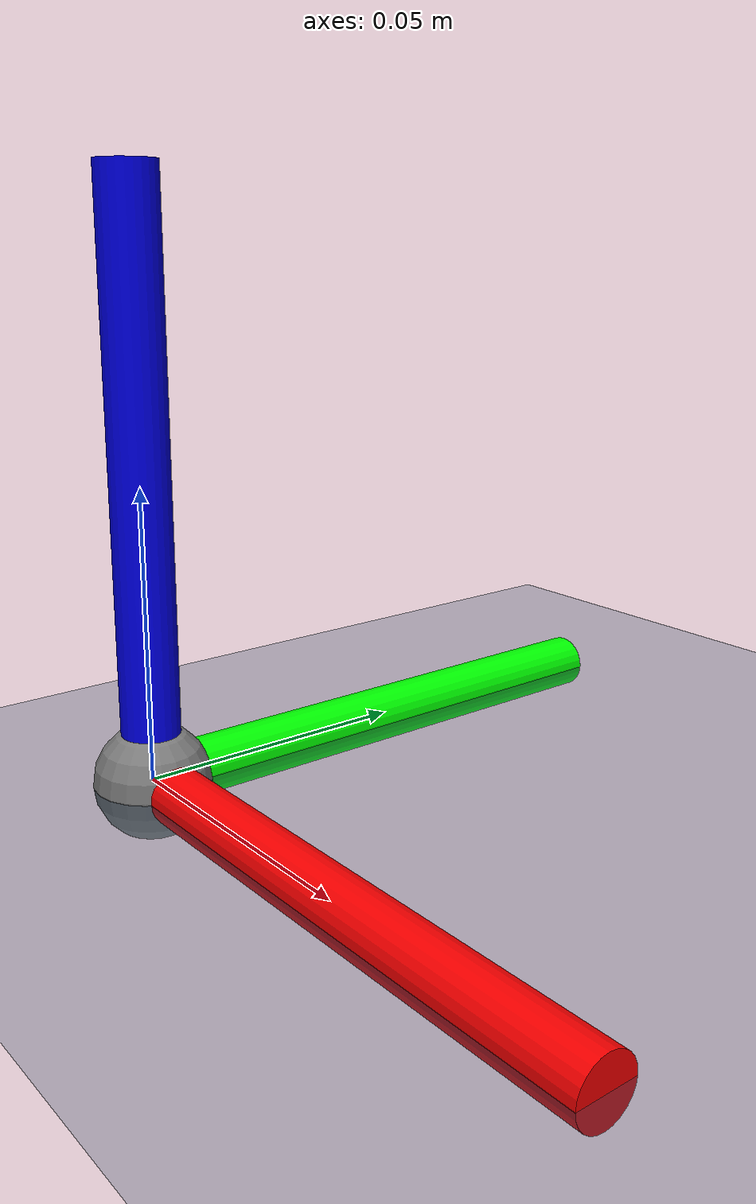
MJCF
<mujoco model="hand">
    <compiler angle="radian" meshdir="../"/>
  <include file="../assets/scene/floor_sky.xml" />
  <worldbody>

    <!-- Head  -->
    <body name="Head"  pos="0.0 0.0 0.0">
      <joint type="free" name="head"/>
      <geom type="sphere" size="0.01"/>
      <geom type="cylinder" size="0.005 0.05" pos="0.05 0 0" quat="0.5 0.5 0.5 0.5" rgba="1 0 0 1"/>
      <geom type="cylinder" size="0.005 0.05" pos="0 0.05 0" quat="-0.5 0.5 0.5 0.5" rgba="0 1 0 1"/>
      <geom type="cylinder" size="0.005 0.05" pos="0 0 0.05" rgba="0 0 1 1"/>
    </body>
    <body name="right_wrist"  pos="0.0 0.0 0.0">
      <joint type="free" name="right_wrist"/>
      <geom type="sphere" size="0.01"/>
      <geom type="cylinder" size="0.005 0.05" pos="0.05 0 0" quat="0.5 0.5 0.5 0.5" rgba="1 0 0 1"/>
      <geom type="cylinder" size="0.005 0.05" pos="0 0.05 0" quat="-0.5 0.5 0.5 0.5" rgba="0 1 0 1"/>
      <geom type="cylinder" size="0.005 0.05" pos="0 0 0.05" rgba="0 0 1 1"/>
    </body>
    <body name="left_wrist"  pos="00 0.0 0.0">
      <joint type="free" name="left_wrist"/>
      <geom type="sphere" size="0.01"/>
      <geom type="cylinder" size="0.005 0.05" pos="0.05 0 0" quat="0.5 0.5 0.5 0.5" rgba="1 0 0 1"/>
      <geom type="cylinder" size="0.005 0.05" pos="0 0.05 0" quat="-0.5 0.5 0.5 0.5" rgba="0 1 0 1"/>
      <geom type="cylinder" size="0.005 0.05" pos="0 0 0.05" rgba="0 0 1 1"/>
    </body>

    <!-- Right Finger 0~24 -->
    <body name="right_finger_0"  pos="0.0 0.0 0.0">
      <joint type="free"/>
      <geom type="sphere" size="0.005"/>
      <geom type="cylinder" size="0.001 0.01" pos="0.01 0 0" quat="0.5 0.5 0.5 0.5" rgba="1 0 0 1"/>
      <geom type="cylinder" size="0.001 0.01" pos="0 0.01 0" quat="-0.5 0.5 0.5 0.5" rgba="0 1 0 1"/>
      <geom type="cylinder" size="0.001 0.01" pos="0 0 0.01" rgba="0 0 1 1"/>
    </body>

    <body name="right_finger_1"  pos="0.0 0.0 0.0">
      <joint type="free"/>
      <geom type="sphere" size="0.005"/>
      <geom type="cylinder" size="0.001 0.01" pos="0.01 0 0" quat="0.5 0.5 0.5 0.5" rgba="1 0 0 1"/>
      <geom type="cylinder" size="0.001 0.01" pos="0 0.01 0" quat="-0.5 0.5 0.5 0.5" rgba="0 1 0 1"/>
      <geom type="cylinder" size="0.001 0.01" pos="0 0 0.01" rgba="0 0 1 1"/>
    </body>

    <body name="right_finger_2"  pos="0.0 0.0 0.0">
      <joint type="free"/>
      <geom type="sphere" size="0.005"/>
      <geom type="cylinder" size="0.001 0.01" pos="0.01 0 0" quat="0.5 0.5 0.5 0.5" rgba="1 0 0 1"/>
      <geom type="cylinder" size="0.001 0.01" pos="0 0.01 0" quat="-0.5 0.5 0.5 0.5" rgba="0 1 0 1"/>
      <geom type="cylinder" size="0.001 0.01" pos="0 0 0.01" rgba="0 0 1 1"/>
    </body>

    <body name="right_finger_3"  pos="0.0 0.0 0.0">
      <joint type="free"/>
      <geom type="sphere" size="0.005"/>
      <geom type="cylinder" size="0.001 0.01" pos="0.01 0 0" quat="0.5 0.5 0.5 0.5" rgba="1 0 0 1"/>
      <geom type="cylinder" size="0.001 0.01" pos="0 0.01 0" quat="-0.5 0.5 0.5 0.5" rgba="0 1 0 1"/>
      <geom type="cylinder" size="0.001 0.01" pos="0 0 0.01" rgba="0 0 1 1"/>
    </body>

    <body name="right_finger_4"  pos="0.0 0.0 0.0">
      <joint type="free"/>
      <geom type="sphere" size="0.005"/>
      <geom type="cylinder" size="0.001 0.01" pos="0.01 0 0" quat="0.5 0.5 0.5 0.5" rgba="1 0 0 1"/>
      <geom type="cylinder" size="0.001 0.01" pos="0 0.01 0" quat="-0.5 0.5 0.5 0.5" rgba="0 1 0 1"/>
      <geom type="cylinder" size="0.001 0.01" pos="0 0 0.01" rgba="0 0 1 1"/>
    </body>

    <body name="right_finger_5"  pos="0.0 0.0 0.0">
      <joint type="free"/>
      <geom type="sphere" size="0.005"/>
      <geom type="cylinder" size="0.001 0.01" pos="0.01 0 0" quat="0.5 0.5 0.5 0.5" rgba="1 0 0 1"/>
      <geom type="cylinder" size="0.001 0.01" pos="0 0.01 0" quat="-0.5 0.5 0.5 0.5" rgba="0 1 0 1"/>
      <geom type="cylinder" size="0.001 0.01" pos="0 0 0.01" rgba="0 0 1 1"/>
    </body>

    <body name="right_finger_6"  pos="0.0 0.0 0.0">
      <joint type="free"/>
      <geom type="sphere" size="0.005"/>
      <geom type="cylinder" size="0.001 0.01" pos="0.01 0 0" quat="0.5 0.5 0.5 0.5" rgba="1 0 0 1"/>
      <geom type="cylinder" size="0.001 0.01" pos="0 0.01 0" quat="-0.5 0.5 0.5 0.5" rgba="0 1 0 1"/>
      <geom type="cylinder" size="0.001 0.01" pos="0 0 0.01" rgba="0 0 1 1"/>
    </body>

    <body name="right_finger_7"  pos="0.0 0.0 0.0">
      <joint type="free"/>
      <geom type="sphere" size="0.005"/>
      <geom type="cylinder" size="0.001 0.01" pos="0.01 0 0" quat="0.5 0.5 0.5 0.5" rgba="1 0 0 1"/>
      <geom type="cylinder" size="0.001 0.01" pos="0 0.01 0" quat="-0.5 0.5 0.5 0.5" rgba="0 1 0 1"/>
      <geom type="cylinder" size="0.001 0.01" pos="0 0 0.01" rgba="0 0 1 1"/>
    </body>

    <body name="right_finger_8"  pos="0.0 0.0 0.0">
      <joint type="free"/>
      <geom type="sphere" size="0.005"/>
      <geom type="cylinder" size="0.001 0.01" pos="0.01 0 0" quat="0.5 0.5 0.5 0.5" rgba="1 0 0 1"/>
      <geom type="cylinder" size="0.001 0.01" pos="0 0.01 0" quat="-0.5 0.5 0.5 0.5" rgba="0 1 0 1"/>
      <geom type="cylinder" size="0.001 0.01" pos="0 0 0.01" rgba="0 0 1 1"/>
    </body>

    <body name="right_finger_9"  pos="0.0 0.0 0.0">
      <joint type="free"/>
      <geom type="sphere" size="0.005"/>
      <geom type="cylinder" size="0.001 0.01" pos="0.01 0 0" quat="0.5 0.5 0.5 0.5" rgba="1 0 0 1"/>
      <geom type="cylinder" size="0.001 0.01" pos="0 0.01 0" quat="-0.5 0.5 0.5 0.5" rgba="0 1 0 1"/>
      <geom type="cylinder" size="0.001 0.01" pos="0 0 0.01" rgba="0 0 1 1"/>
    </body>

    <body name="right_finger_10"  pos="0.0 0.0 0.0">
      <joint type="free"/>
      <geom type="sphere" size="0.005"/>
      <geom type="cylinder" size="0.001 0.01" pos="0.01 0 0" quat="0.5 0.5 0.5 0.5" rgba="1 0 0 1"/>
      <geom type="cylinder" size="0.001 0.01" pos="0 0.01 0" quat="-0.5 0.5 0.5 0.5" rgba="0 1 0 1"/>
      <geom type="cylinder" size="0.001 0.01" pos="0 0 0.01" rgba="0 0 1 1"/>
    </body>

    <body name="right_finger_11"  pos="0.0 0.0 0.0">
      <joint type="free"/>
      <geom type="sphere" size="0.005"/>
      <geom type="cylinder" size="0.001 0.01" pos="0.01 0 0" quat="0.5 0.5 0.5 0.5" rgba="1 0 0 1"/>
      <geom type="cylinder" size="0.001 0.01" pos="0 0.01 0" quat="-0.5 0.5 0.5 0.5" rgba="0 1 0 1"/>
      <geom type="cylinder" size="0.001 0.01" pos="0 0 0.01" rgba="0 0 1 1"/>
    </body>

    <body name="right_finger_12"  pos="0.0 0.0 0.0">
      <joint type="free"/>
      <geom type="sphere" size="0.005"/>
      <geom type="cylinder" size="0.001 0.01" pos="0.01 0 0" quat="0.5 0.5 0.5 0.5" rgba="1 0 0 1"/>
      <geom type="cylinder" size="0.001 0.01" pos="0 0.01 0" quat="-0.5 0.5 0.5 0.5" rgba="0 1 0 1"/>
      <geom type="cylinder" size="0.001 0.01" pos="0 0 0.01" rgba="0 0 1 1"/>
    </body>

    <body name="right_finger_13"  pos="0.0 0.0 0.0">
      <joint type="free"/>
      <geom type="sphere" size="0.005"/>
      <geom type="cylinder" size="0.001 0.01" pos="0.01 0 0" quat="0.5 0.5 0.5 0.5" rgba="1 0 0 1"/>
      <geom type="cylinder" size="0.001 0.01" pos="0 0.01 0" quat="-0.5 0.5 0.5 0.5" rgba="0 1 0 1"/>
      <geom type="cylinder" size="0.001 0.01" pos="0 0 0.01" rgba="0 0 1 1"/>
    </body>

    <body name="right_finger_14"  pos="0.0 0.0 0.0">
      <joint type="free"/>
      <geom type="sphere" size="0.005"/>
      <geom type="cylinder" size="0.001 0.01" pos="0.01 0 0" quat="0.5 0.5 0.5 0.5" rgba="1 0 0 1"/>
      <geom type="cylinder" size="0.001 0.01" pos="0 0.01 0" quat="-0.5 0.5 0.5 0.5" rgba="0 1 0 1"/>
      <geom type="cylinder" size="0.001 0.01" pos="0 0 0.01" rgba="0 0 1 1"/>
    </body>

    <body name="right_finger_15"  pos="0.0 0.0 0.0">
      <joint type="free"/>
      <geom type="sphere" size="0.005"/>
      <geom type="cylinder" size="0.001 0.01" pos="0.01 0 0" quat="0.5 0.5 0.5 0.5" rgba="1 0 0 1"/>
      <geom type="cylinder" size="0.001 0.01" pos="0 0.01 0" quat="-0.5 0.5 0.5 0.5" rgba="0 1 0 1"/>
      <geom type="cylinder" size="0.001 0.01" pos="0 0 0.01" rgba="0 0 1 1"/>
    </body>

    <body name="right_finger_16"  pos="0.0 0.0 0.0">
      <joint type="free"/>
      <geom type="sphere" size="0.005"/>
      <geom type="cylinder" size="0.001 0.01" pos="0.01 0 0" quat="0.5 0.5 0.5 0.5" rgba="1 0 0 1"/>
      <geom type="cylinder" size="0.001 0.01" pos="0 0.01 0" quat="-0.5 0.5 0.5 0.5" rgba="0 1 0 1"/>
      <geom type="cylinder" size="0.001 0.01" pos="0 0 0.01" rgba="0 0 1 1"/>
    </body>

    <body name="right_finger_17"  pos="0.0 0.0 0.0">
      <joint type="free"/>
      <geom type="sphere" size="0.005"/>
      <geom type="cylinder" size="0.001 0.01" pos="0.01 0 0" quat="0.5 0.5 0.5 0.5" rgba="1 0 0 1"/>
      <geom type="cylinder" size="0.001 0.01" pos="0 0.01 0" quat="-0.5 0.5 0.5 0.5" rgba="0 1 0 1"/>
      <geom type="cylinder" size="0.001 0.01" pos="0 0 0.01" rgba="0 0 1 1"/>
    </body>

    <body name="right_finger_18"  pos="0.0 0.0 0.0">
      <joint type="free"/>
      <geom type="sphere" size="0.005"/>
      <geom type="cylinder" size="0.001 0.01" pos="0.01 0 0" quat="0.5 0.5 0.5 0.5" rgba="1 0 0 1"/>
      <geom type="cylinder" size="0.001 0.01" pos="0 0.01 0" quat="-0.5 0.5 0.5 0.5" rgba="0 1 0 1"/>
      <geom type="cylinder" size="0.001 0.01" pos="0 0 0.01" rgba="0 0 1 1"/>
    </body>

    <body name="right_finger_19"  pos="0.0 0.0 0.0">
      <joint type="free"/>
      <geom type="sphere" size="0.005"/>
      <geom type="cylinder" size="0.001 0.01" pos="0.01 0 0" quat="0.5 0.5 0.5 0.5" rgba="1 0 0 1"/>
      <geom type="cylinder" size="0.001 0.01" pos="0 0.01 0" quat="-0.5 0.5 0.5 0.5" rgba="0 1 0 1"/>
      <geom type="cylinder" size="0.001 0.01" pos="0 0 0.01" rgba="0 0 1 1"/>
    </body>

    <body name="right_finger_20"  pos="0.0 0.0 0.0">
      <joint type="free"/>
      <geom type="sphere" size="0.005"/>
      <geom type="cylinder" size="0.001 0.01" pos="0.01 0 0" quat="0.5 0.5 0.5 0.5" rgba="1 0 0 1"/>
      <geom type="cylinder" size="0.001 0.01" pos="0 0.01 0" quat="-0.5 0.5 0.5 0.5" rgba="0 1 0 1"/>
      <geom type="cylinder" size="0.001 0.01" pos="0 0 0.01" rgba="0 0 1 1"/>
    </body>

    <body name="right_finger_21"  pos="0.0 0.0 0.0">
      <joint type="free"/>
      <geom type="sphere" size="0.005"/>
      <geom type="cylinder" size="0.001 0.01" pos="0.01 0 0" quat="0.5 0.5 0.5 0.5" rgba="1 0 0 1"/>
      <geom type="cylinder" size="0.001 0.01" pos="0 0.01 0" quat="-0.5 0.5 0.5 0.5" rgba="0 1 0 1"/>
      <geom type="cylinder" size="0.001 0.01" pos="0 0 0.01" rgba="0 0 1 1"/>
    </body>

    <body name="right_finger_22"  pos="0.0 0.0 0.0">
      <joint type="free"/>
      <geom type="sphere" size="0.005"/>
      <geom type="cylinder" size="0.001 0.01" pos="0.01 0 0" quat="0.5 0.5 0.5 0.5" rgba="1 0 0 1"/>
      <geom type="cylinder" size="0.001 0.01" pos="0 0.01 0" quat="-0.5 0.5 0.5 0.5" rgba="0 1 0 1"/>
      <geom type="cylinder" size="0.001 0.01" pos="0 0 0.01" rgba="0 0 1 1"/>
    </body>

    <body name="right_finger_23"  pos="0.0 0.0 0.0">
      <joint type="free"/>
      <geom type="sphere" size="0.005"/>
      <geom type="cylinder" size="0.001 0.01" pos="0.01 0 0" quat="0.5 0.5 0.5 0.5" rgba="1 0 0 1"/>
      <geom type="cylinder" size="0.001 0.01" pos="0 0.01 0" quat="-0.5 0.5 0.5 0.5" rgba="0 1 0 1"/>
      <geom type="cylinder" size="0.001 0.01" pos="0 0 0.01" rgba="0 0 1 1"/>
    </body>

    <body name="right_finger_24"  pos="0.0 0.0 0.0">
      <joint type="free"/>
      <geom type="sphere" size="0.005"/>
      <geom type="cylinder" size="0.001 0.01" pos="0.01 0 0" quat="0.5 0.5 0.5 0.5" rgba="1 0 0 1"/>
      <geom type="cylinder" size="0.001 0.01" pos="0 0.01 0" quat="-0.5 0.5 0.5 0.5" rgba="0 1 0 1"/>
      <geom type="cylinder" size="0.001 0.01" pos="0 0 0.01" rgba="0 0 1 1"/>
    </body>

    <!-- Left Finger 0~24 -->
    <body name="left_finger_0"  pos="0.0 0.0 0.0">
      <joint type="free"/>
      <geom type="sphere" size="0.005"/>
      <geom type="cylinder" size="0.001 0.01" pos="0.01 0 0" quat="0.5 0.5 0.5 0.5" rgba="1 0 0 1"/>
      <geom type="cylinder" size="0.001 0.01" pos="0 0.01 0" quat="-0.5 0.5 0.5 0.5" rgba="0 1 0 1"/>
      <geom type="cylinder" size="0.001 0.01" pos="0 0 0.01" rgba="0 0 1 1"/>
    </body>

    <body name="left_finger_1"  pos="0.0 0.0 0.0">
      <joint type="free"/>
      <geom type="sphere" size="0.005"/>
      <geom type="cylinder" size="0.001 0.01" pos="0.01 0 0" quat="0.5 0.5 0.5 0.5" rgba="1 0 0 1"/>
      <geom type="cylinder" size="0.001 0.01" pos="0 0.01 0" quat="-0.5 0.5 0.5 0.5" rgba="0 1 0 1"/>
      <geom type="cylinder" size="0.001 0.01" pos="0 0 0.01" rgba="0 0 1 1"/>
    </body>

    <body name="left_finger_2"  pos="0.0 0.0 0.0">
      <joint type="free"/>
      <geom type="sphere" size="0.005"/>
      <geom type="cylinder" size="0.001 0.01" pos="0.01 0 0" quat="0.5 0.5 0.5 0.5" rgba="1 0 0 1"/>
      <geom type="cylinder" size="0.001 0.01" pos="0 0.01 0" quat="-0.5 0.5 0.5 0.5" rgba="0 1 0 1"/>
      <geom type="cylinder" size="0.001 0.01" pos="0 0 0.01" rgba="0 0 1 1"/>
    </body>

    <body name="left_finger_3"  pos="0.0 0.0 0.0">
      <joint type="free"/>
      <geom type="sphere" size="0.005"/>
      <geom type="cylinder" size="0.001 0.01" pos="0.01 0 0" quat="0.5 0.5 0.5 0.5" rgba="1 0 0 1"/>
      <geom type="cylinder" size="0.001 0.01" pos="0 0.01 0" quat="-0.5 0.5 0.5 0.5" rgba="0 1 0 1"/>
      <geom type="cylinder" size="0.001 0.01" pos="0 0 0.01" rgba="0 0 1 1"/>
    </body>

    <body name="left_finger_4"  pos="0.0 0.0 0.0">
      <joint type="free"/>
      <geom type="sphere" size="0.005"/>
      <geom type="cylinder" size="0.001 0.01" pos="0.01 0 0" quat="0.5 0.5 0.5 0.5" rgba="1 0 0 1"/>
      <geom type="cylinder" size="0.001 0.01" pos="0 0.01 0" quat="-0.5 0.5 0.5 0.5" rgba="0 1 0 1"/>
      <geom type="cylinder" size="0.001 0.01" pos="0 0 0.01" rgba="0 0 1 1"/>
    </body>

    <body name="left_finger_5"  pos="0.0 0.0 0.0">
      <joint type="free"/>
      <geom type="sphere" size="0.005"/>
      <geom type="cylinder" size="0.001 0.01" pos="0.01 0 0" quat="0.5 0.5 0.5 0.5" rgba="1 0 0 1"/>
      <geom type="cylinder" size="0.001 0.01" pos="0 0.01 0" quat="-0.5 0.5 0.5 0.5" rgba="0 1 0 1"/>
      <geom type="cylinder" size="0.001 0.01" pos="0 0 0.01" rgba="0 0 1 1"/>
    </body>

    <body name="left_finger_6"  pos="0.0 0.0 0.0">
      <joint type="free"/>
      <geom type="sphere" size="0.005"/>
      <geom type="cylinder" size="0.001 0.01" pos="0.01 0 0" quat="0.5 0.5 0.5 0.5" rgba="1 0 0 1"/>
      <geom type="cylinder" size="0.001 0.01" pos="0 0.01 0" quat="-0.5 0.5 0.5 0.5" rgba="0 1 0 1"/>
      <geom type="cylinder" size="0.001 0.01" pos="0 0 0.01" rgba="0 0 1 1"/>
    </body>

    <body name="left_finger_7"  pos="0.0 0.0 0.0">
      <joint type="free"/>
      <geom type="sphere" size="0.005"/>
      <geom type="cylinder" size="0.001 0.01" pos="0.01 0 0" quat="0.5 0.5 0.5 0.5" rgba="1 0 0 1"/>
      <geom type="cylinder" size="0.001 0.01" pos="0 0.01 0" quat="-0.5 0.5 0.5 0.5" rgba="0 1 0 1"/>
      <geom type="cylinder" size="0.001 0.01" pos="0 0 0.01" rgba="0 0 1 1"/>
    </body>

    <body name="left_finger_8"  pos="0.0 0.0 0.0">
      <joint type="free"/>
      <geom type="sphere" size="0.005"/>
      <geom type="cylinder" size="0.001 0.01" pos="0.01 0 0" quat="0.5 0.5 0.5 0.5" rgba="1 0 0 1"/>
      <geom type="cylinder" size="0.001 0.01" pos="0 0.01 0" quat="-0.5 0.5 0.5 0.5" rgba="0 1 0 1"/>
      <geom type="cylinder" size="0.001 0.01" pos="0 0 0.01" rgba="0 0 1 1"/>
    </body>

    <body name="left_finger_9"  pos="0.0 0.0 0.0">
      <joint type="free"/>
      <geom type="sphere" size="0.005"/>
      <geom type="cylinder" size="0.001 0.01" pos="0.01 0 0" quat="0.5 0.5 0.5 0.5" rgba="1 0 0 1"/>
      <geom type="cylinder" size="0.001 0.01" pos="0 0.01 0" quat="-0.5 0.5 0.5 0.5" rgba="0 1 0 1"/>
      <geom type="cylinder" size="0.001 0.01" pos="0 0 0.01" rgba="0 0 1 1"/>
    </body>

    <body name="left_finger_10"  pos="0.0 0.0 0.0">
      <joint type="free"/>
      <geom type="sphere" size="0.005"/>
      <geom type="cylinder" size="0.001 0.01" pos="0.01 0 0" quat="0.5 0.5 0.5 0.5" rgba="1 0 0 1"/>
      <geom type="cylinder" size="0.001 0.01" pos="0 0.01 0" quat="-0.5 0.5 0.5 0.5" rgba="0 1 0 1"/>
      <geom type="cylinder" size="0.001 0.01" pos="0 0 0.01" rgba="0 0 1 1"/>
    </body>

    <body name="left_finger_11"  pos="0.0 0.0 0.0">
      <joint type="free"/>
      <geom type="sphere" size="0.005"/>
      <geom type="cylinder" size="0.001 0.01" pos="0.01 0 0" quat="0.5 0.5 0.5 0.5" rgba="1 0 0 1"/>
      <geom type="cylinder" size="0.001 0.01" pos="0 0.01 0" quat="-0.5 0.5 0.5 0.5" rgba="0 1 0 1"/>
      <geom type="cylinder" size="0.001 0.01" pos="0 0 0.01" rgba="0 0 1 1"/>
    </body>

    <body name="left_finger_12"  pos="0.0 0.0 0.0">
      <joint type="free"/>
      <geom type="sphere" size="0.005"/>
      <geom type="cylinder" size="0.001 0.01" pos="0.01 0 0" quat="0.5 0.5 0.5 0.5" rgba="1 0 0 1"/>
      <geom type="cylinder" size="0.001 0.01" pos="0 0.01 0" quat="-0.5 0.5 0.5 0.5" rgba="0 1 0 1"/>
      <geom type="cylinder" size="0.001 0.01" pos="0 0 0.01" rgba="0 0 1 1"/>
    </body>

    <body name="left_finger_13"  pos="0.0 0.0 0.0">
      <joint type="free"/>
      <geom type="sphere" size="0.005"/>
      <geom type="cylinder" size="0.001 0.01" pos="0.01 0 0" quat="0.5 0.5 0.5 0.5" rgba="1 0 0 1"/>
      <geom type="cylinder" size="0.001 0.01" pos="0 0.01 0" quat="-0.5 0.5 0.5 0.5" rgba="0 1 0 1"/>
      <geom type="cylinder" size="0.001 0.01" pos="0 0 0.01" rgba="0 0 1 1"/>
    </body>

    <body name="left_finger_14"  pos="0.0 0.0 0.0">
      <joint type="free"/>
      <geom type="sphere" size="0.005"/>
      <geom type="cylinder" size="0.001 0.01" pos="0.01 0 0" quat="0.5 0.5 0.5 0.5" rgba="1 0 0 1"/>
      <geom type="cylinder" size="0.001 0.01" pos="0 0.01 0" quat="-0.5 0.5 0.5 0.5" rgba="0 1 0 1"/>
      <geom type="cylinder" size="0.001 0.01" pos="0 0 0.01" rgba="0 0 1 1"/>
    </body>

    <body name="left_finger_15"  pos="0.0 0.0 0.0">
      <joint type="free"/>
      <geom type="sphere" size="0.005"/>
      <geom type="cylinder" size="0.001 0.01" pos="0.01 0 0" quat="0.5 0.5 0.5 0.5" rgba="1 0 0 1"/>
      <geom type="cylinder" size="0.001 0.01" pos="0 0.01 0" quat="-0.5 0.5 0.5 0.5" rgba="0 1 0 1"/>
      <geom type="cylinder" size="0.001 0.01" pos="0 0 0.01" rgba="0 0 1 1"/>
    </body>

    <body name="left_finger_16"  pos="0.0 0.0 0.0">
      <joint type="free"/>
      <geom type="sphere" size="0.005"/>
      <geom type="cylinder" size="0.001 0.01" pos="0.01 0 0" quat="0.5 0.5 0.5 0.5" rgba="1 0 0 1"/>
      <geom type="cylinder" size="0.001 0.01" pos="0 0.01 0" quat="-0.5 0.5 0.5 0.5" rgba="0 1 0 1"/>
      <geom type="cylinder" size="0.001 0.01" pos="0 0 0.01" rgba="0 0 1 1"/>
    </body>

    <body name="left_finger_17"  pos="0.0 0.0 0.0">
      <joint type="free"/>
      <geom type="sphere" size="0.005"/>
      <geom type="cylinder" size="0.001 0.01" pos="0.01 0 0" quat="0.5 0.5 0.5 0.5" rgba="1 0 0 1"/>
      <geom type="cylinder" size="0.001 0.01" pos="0 0.01 0" quat="-0.5 0.5 0.5 0.5" rgba="0 1 0 1"/>
      <geom type="cylinder" size="0.001 0.01" pos="0 0 0.01" rgba="0 0 1 1"/>
    </body>

    <body name="left_finger_18"  pos="0.0 0.0 0.0">
      <joint type="free"/>
      <geom type="sphere" size="0.005"/>
      <geom type="cylinder" size="0.001 0.01" pos="0.01 0 0" quat="0.5 0.5 0.5 0.5" rgba="1 0 0 1"/>
      <geom type="cylinder" size="0.001 0.01" pos="0 0.01 0" quat="-0.5 0.5 0.5 0.5" rgba="0 1 0 1"/>
      <geom type="cylinder" size="0.001 0.01" pos="0 0 0.01" rgba="0 0 1 1"/>
    </body>

    <body name="left_finger_19"  pos="0.0 0.0 0.0">
      <joint type="free"/>
      <geom type="sphere" size="0.005"/>
      <geom type="cylinder" size="0.001 0.01" pos="0.01 0 0" quat="0.5 0.5 0.5 0.5" rgba="1 0 0 1"/>
      <geom type="cylinder" size="0.001 0.01" pos="0 0.01 0" quat="-0.5 0.5 0.5 0.5" rgba="0 1 0 1"/>
      <geom type="cylinder" size="0.001 0.01" pos="0 0 0.01" rgba="0 0 1 1"/>
    </body>

    <body name="left_finger_20"  pos="0.0 0.0 0.0">
      <joint type="free"/>
      <geom type="sphere" size="0.005"/>
      <geom type="cylinder" size="0.001 0.01" pos="0.01 0 0" quat="0.5 0.5 0.5 0.5" rgba="1 0 0 1"/>
      <geom type="cylinder" size="0.001 0.01" pos="0 0.01 0" quat="-0.5 0.5 0.5 0.5" rgba="0 1 0 1"/>
      <geom type="cylinder" size="0.001 0.01" pos="0 0 0.01" rgba="0 0 1 1"/>
    </body>

    <body name="left_finger_21"  pos="0.0 0.0 0.0">
      <joint type="free"/>
      <geom type="sphere" size="0.005"/>
      <geom type="cylinder" size="0.001 0.01" pos="0.01 0 0" quat="0.5 0.5 0.5 0.5" rgba="1 0 0 1"/>
      <geom type="cylinder" size="0.001 0.01" pos="0 0.01 0" quat="-0.5 0.5 0.5 0.5" rgba="0 1 0 1"/>
      <geom type="cylinder" size="0.001 0.01" pos="0 0 0.01" rgba="0 0 1 1"/>
    </body>

    <body name="left_finger_22"  pos="0.0 0.0 0.0">
      <joint type="free"/>
      <geom type="sphere" size="0.005"/>
      <geom type="cylinder" size="0.001 0.01" pos="0.01 0 0" quat="0.5 0.5 0.5 0.5" rgba="1 0 0 1"/>
      <geom type="cylinder" size="0.001 0.01" pos="0 0.01 0" quat="-0.5 0.5 0.5 0.5" rgba="0 1 0 1"/>
      <geom type="cylinder" size="0.001 0.01" pos="0 0 0.01" rgba="0 0 1 1"/>
    </body>

    <body name="left_finger_23"  pos="0.0 0.0 0.0">
      <joint type="free"/>
      <geom type="sphere" size="0.005"/>
      <geom type="cylinder" size="0.001 0.01" pos="0.01 0 0" quat="0.5 0.5 0.5 0.5" rgba="1 0 0 1"/>
      <geom type="cylinder" size="0.001 0.01" pos="0 0.01 0" quat="-0.5 0.5 0.5 0.5" rgba="0 1 0 1"/>
      <geom type="cylinder" size="0.001 0.01" pos="0 0 0.01" rgba="0 0 1 1"/>
    </body>

    <body name="left_finger_24"  pos="0.0 0.0 0.0">
      <joint type="free"/>
      <geom type="sphere" size="0.005"/>
      <geom type="cylinder" size="0.001 0.01" pos="0.01 0 0" quat="0.5 0.5 0.5 0.5" rgba="1 0 0 1"/>
      <geom type="cylinder" size="0.001 0.01" pos="0 0.01 0" quat="-0.5 0.5 0.5 0.5" rgba="0 1 0 1"/>
      <geom type="cylinder" size="0.001 0.01" pos="0 0 0.01" rgba="0 0 1 1"/>
    </body>

  </worldbody>
</mujoco>

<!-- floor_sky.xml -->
<mujoco model="floor and sky">

    <!-- Haze -->
    <visual>
        <headlight diffuse="0.6 0.6 0.6" ambient="0.1 0.1 0.1" specular="0 0 0" />
        <rgba haze="0.15 0.25 0.35 1" />
        <global azimuth="120" elevation="-20" />
    </visual>

    <!-- Asset -->
    <asset>
        <!-- Sky -->
        <texture type="skybox" builtin="gradient" rgb1="0.1 0.2 0.3" rgb2="0 0 0" width="512"
            height="3072" />
        <!-- Ground -->
        <texture type="2d" name="groundplane" builtin="checker" mark="edge" rgb1="0.3 0.4 0.5"
            rgb2="0.1 0.2 0.3" markrgb="0.8 0.8 0.8" width="300" height="300" />
        <material name="groundplane" texture="groundplane" texuniform="true" texrepeat="2 2"
            reflectance="0.2" />
    </asset>

    <!-- Light and floor -->
    <worldbody>
        <light pos="0 0 3" dir="0 0 -1" directional="true" diffuse="1 1 1"/>
        <geom name="floor" size="0 0 0.05" type="plane" material="groundplane" />
    </worldbody>

</mujoco>
